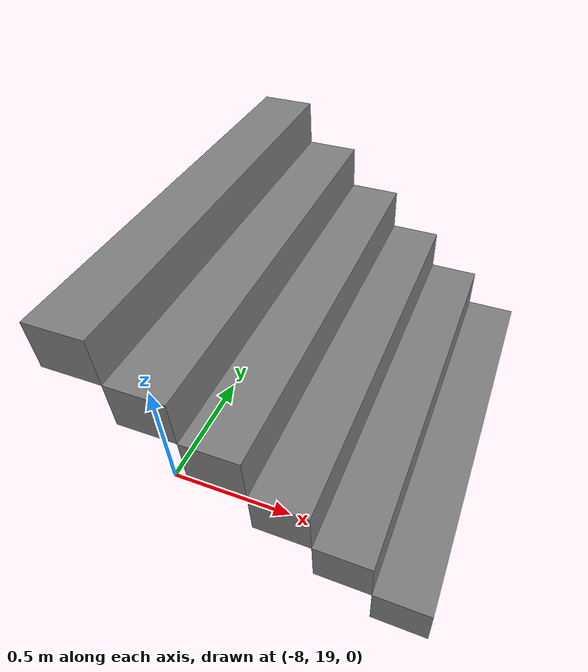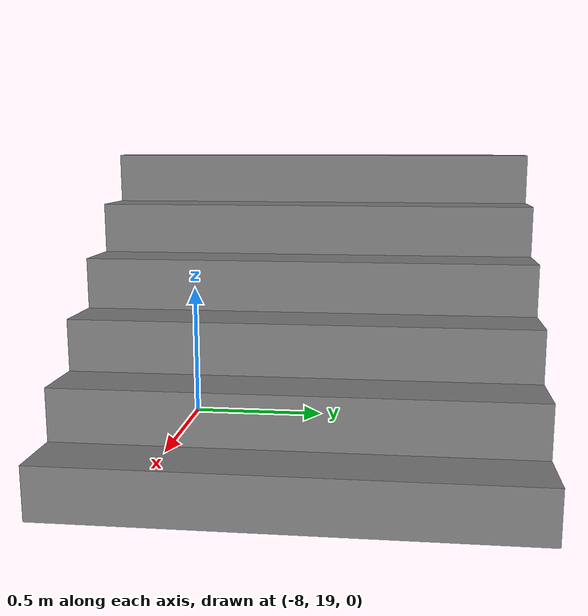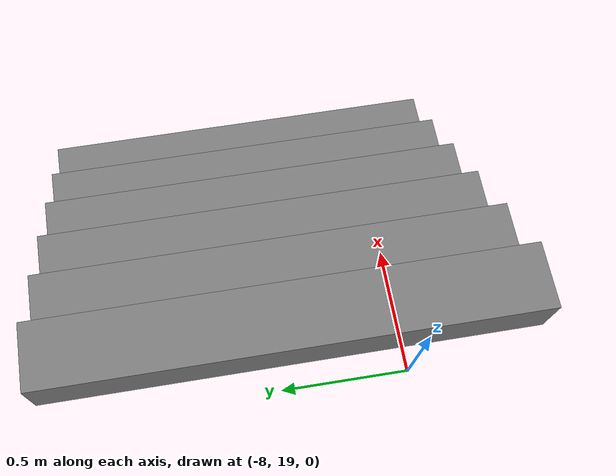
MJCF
<mujoco model="go2 scene">

  <statistic center="0 0 0.1" extent="0.8" />

  <visual>
    <headlight diffuse="0.6 0.6 0.6" ambient="0.3 0.3 0.3" specular="0 0 0" />
    <rgba haze="0.15 0.25 0.35 1" />
    <global azimuth="-130" elevation="-20" />
  </visual>

  <asset>
    <texture type="skybox" builtin="gradient" rgb1="0.3 0.5 0.7" rgb2="0 0 0" width="512" height="3072" />
  </asset>

  <worldbody>

  <geom pos="-7.0 19.5 0.085" type="box" size="0.1 0.75 0.085" quat="6.123233995736766e-17 0.0 0.0 1.0" /><geom pos="-7.2 19.5 0.255" type="box" size="0.1 0.75 0.085" quat="6.123233995736766e-17 0.0 0.0 1.0" /><geom pos="-7.4 19.5 0.42500000000000004" type="box" size="0.1 0.75 0.085" quat="6.123233995736766e-17 0.0 0.0 1.0" /><geom pos="-7.6 19.5 0.595" type="box" size="0.1 0.75 0.085" quat="6.123233995736766e-17 0.0 0.0 1.0" /><geom pos="-7.8 19.5 0.7649999999999999" type="box" size="0.1 0.75 0.085" quat="6.123233995736766e-17 0.0 0.0 1.0" /><geom pos="-8.0 19.5 0.9349999999999998" type="box" size="0.1 0.75 0.085" quat="6.123233995736766e-17 0.0 0.0 1.0" /></worldbody>
</mujoco>
